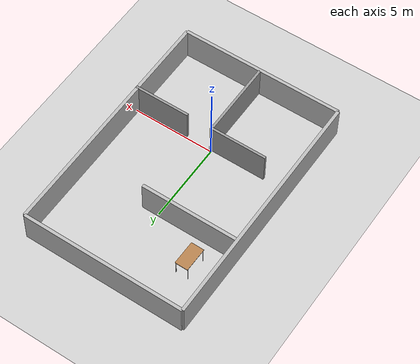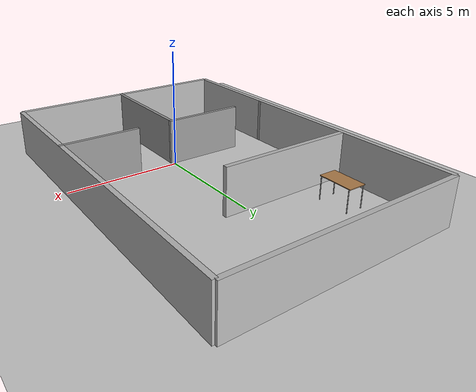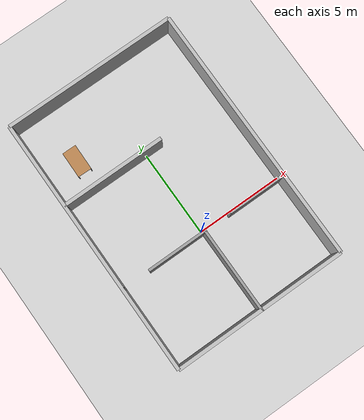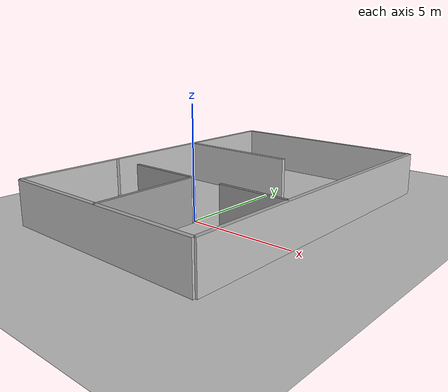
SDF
<sdf version="1.6">
 <world name="default">
  <physics name="default_physics" default="0" type="ode">
   <ode>
    <solver>
     <type>quick</type>
     <iters>20</iters>
     <sor>1</sor>
     <use_dynamic_moi_rescaling>0</use_dynamic_moi_rescaling>
    </solver>
    <constraints>
     <cfm>0</cfm>
     <erp>0.2</erp>
     <contact_max_correcting_vel>100</contact_max_correcting_vel>
     <contact_surface_layer>0</contact_surface_layer>
    </constraints>
   </ode>
   <real_time_update_rate>1000</real_time_update_rate>
   <max_step_size>0.001</max_step_size>
   <real_time_factor>1</real_time_factor>
  </physics>
  <light name="sun" type="directional">
   <pose>0 0 10 0 -0 0</pose>
   <diffuse>0.8 0.8 0.8 1</diffuse>
   <specular>0.2 0.2 0.2 1</specular>
   <attenuation>
    <range>1000</range>
    <constant>0.9</constant>
    <linear>0.01</linear>
    <quadratic>0.001</quadratic>
   </attenuation>
   <direction>-0.5 0.1 -0.9</direction>
  </light>
  <model name="ground_plane">
   <static>1</static>
   <link name="link">
    <collision name="collision">
     <geometry><plane><normal>0 0 1</normal><size>100 100</size></plane></geometry>
     <surface><friction><ode><mu>100</mu><mu2>50</mu2></ode></friction></surface>
    </collision>
    <visual name="visual">
     <cast_shadows>0</cast_shadows>
     <geometry><plane><normal>0 0 1</normal><size>100 100</size></plane></geometry>
     <material>
      <script><uri>file://media/materials/scripts/gazebo.material</uri><name>Gazebo/Grey</name></script>
     </material>
    </visual>
   </link>
  </model>
  <model name="wall_1_model">
   <pose>0 -5 1 0 -0 0</pose>
   <static>1</static>
   <link name="wall_1_body">
    <inertial>
     <mass>1</mass>
     <inertia><ixx>1</ixx><ixy>0</ixy><ixz>0</ixz><iyy>1</iyy><iyz>0</iyz><izz>1</izz></inertia>
    </inertial>
    <collision name="collision"><geometry><box><size>10 0.2 2</size></box></geometry></collision>
    <visual name="visual"><geometry><box><size>10 0.2 2</size></box></geometry></visual>
   </link>
  </model>
  <model name="wall_2_model">
   <pose>0 10 1 0 -0 0</pose>
   <static>1</static>
   <link name="wall_2_body">
    <inertial>
     <mass>1</mass>
     <inertia><ixx>1</ixx><ixy>0</ixy><ixz>0</ixz><iyy>1</iyy><iyz>0</iyz><izz>1</izz></inertia>
    </inertial>
    <collision name="collision"><geometry><box><size>10 0.2 2</size></box></geometry></collision>
    <visual name="visual"><geometry><box><size>10 0.2 2</size></box></geometry></visual>
   </link>
  </model>
  <model name="wall_3_model">
   <pose>-5 2.5 1 0 -0 0</pose>
   <static>1</static>
   <link name="wall_3_body">
    <inertial>
     <mass>1</mass>
     <inertia><ixx>1</ixx><ixy>0</ixy><ixz>0</ixz><iyy>1</iyy><iyz>0</iyz><izz>1</izz></inertia>
    </inertial>
    <collision name="collision"><geometry><box><size>0.2 15 2</size></box></geometry></collision>
    <visual name="visual"><geometry><box><size>0.2 15 2</size></box></geometry></visual>
   </link>
  </model>
  <model name="wall_4_model">
   <pose>5 2.5 1 0 -0 0</pose>
   <static>1</static>
   <link name="wall_4_body">
    <inertial>
     <mass>1</mass>
     <inertia><ixx>1</ixx><ixy>0</ixy><ixz>0</ixz><iyy>1</iyy><iyz>0</iyz><izz>1</izz></inertia>
    </inertial>
    <collision name="collision"><geometry><box><size>0.2 15 2</size></box></geometry></collision>
    <visual name="visual"><geometry><box><size>0.2 15 2</size></box></geometry></visual>
   </link>
  </model>
  <model name="wall_5_model">
   <pose>-2 5 1 0 -0 0</pose>
   <static>1</static>
   <link name="wall_5_body">
    <inertial>
     <mass>1</mass>
     <inertia><ixx>1</ixx><ixy>0</ixy><ixz>0</ixz><iyy>1</iyy><iyz>0</iyz><izz>1</izz></inertia>
    </inertial>
    <collision name="collision"><geometry><box><size>6 0.2 2</size></box></geometry></collision>
    <visual name="visual"><geometry><box><size>6 0.2 2</size></box></geometry></visual>
   </link>
  </model>
  <light name="male03light" type="point">
   <pose>3.6 0.53 1.6 0 -0 0</pose>
   <diffuse>0.5 0.5 0.5 1</diffuse>
   <specular>0.1 0.1 0.1 1</specular>
   <attenuation>
    <range>1</range>
    <linear>0.01</linear>
    <constant>0.3</constant>
    <quadratic>0</quadratic>
   </attenuation>
   <direction>0 0 -1</direction>
   <spot><inner_angle>0.6</inner_angle><outer_angle>0.8</outer_angle><falloff>1.2</falloff></spot>
   <cast_shadows>0</cast_shadows>
  </light>
  <light name="female02light" type="point">
   <pose>-2.5 -2.63 1.5 0 -0 0</pose>
   <diffuse>0.5 0.5 0.5 1</diffuse>
   <specular>0.1 0.1 0.1 1</specular>
   <attenuation>
    <range>1</range>
    <linear>0.01</linear>
    <constant>0.3</constant>
    <quadratic>0</quadratic>
   </attenuation>
   <direction>0 0 -1</direction>
   <spot><inner_angle>0.6</inner_angle><outer_angle>0.8</outer_angle><falloff>1.2</falloff></spot>
   <cast_shadows>0</cast_shadows>
  </light>
  <light name="female03light" type="point">
   <pose>-3 6.2 1.5 0 -0 0</pose>
   <diffuse>0.5 0.5 0.5 1</diffuse>
   <specular>0.1 0.1 0.1 1</specular>
   <attenuation>
    <range>1</range>
    <linear>0.01</linear>
    <constant>0.3</constant>
    <quadratic>0</quadratic>
   </attenuation>
   <direction>0 0 -1</direction>
   <spot><inner_angle>0.6</inner_angle><outer_angle>0.8</outer_angle><falloff>1.2</falloff></spot>
   <cast_shadows>0</cast_shadows>
  </light>
  <light name="female02bislight" type="point">
   <pose>3.8 6.7 1.5 0 -0 0</pose>
   <diffuse>0.5 0.5 0.5 1</diffuse>
   <specular>0.1 0.1 0.1 1</specular>
   <attenuation>
    <range>1</range>
    <linear>0.01</linear>
    <constant>0.3</constant>
    <quadratic>0</quadratic>
   </attenuation>
   <direction>0 0 -1</direction>
   <spot><inner_angle>0.6</inner_angle><outer_angle>0.8</outer_angle><falloff>1.2</falloff></spot>
   <cast_shadows>0</cast_shadows>
  </light>
  <light name="male03bislight" type="point">
   <pose>-2.9 3.7 1.5 0 -0 0</pose>
   <diffuse>0.5 0.5 0.5 1</diffuse>
   <specular>0.1 0.1 0.1 1</specular>
   <attenuation>
    <range>1</range>
    <linear>0.01</linear>
    <constant>0.3</constant>
    <quadratic>0</quadratic>
   </attenuation>
   <direction>0 0 -1</direction>
   <spot><inner_angle>0.6</inner_angle><outer_angle>0.8</outer_angle><falloff>1.2</falloff></spot>
   <cast_shadows>0</cast_shadows>
  </light>
  <gravity>0 0 -9.81</gravity>
  <magnetic_field>6e-06 2.3e-05 -4.2e-05</magnetic_field>
  <atmosphere type="adiabatic"/>
  <scene><ambient>0.4 0.4 0.4 1</ambient><background>0.7 0.7 0.7 1</background><shadows>1</shadows></scene>
  <audio><device>default</device></audio>
  <spherical_coordinates>
   <surface_model>EARTH_WGS84</surface_model>
   <latitude_deg>0</latitude_deg>
   <longitude_deg>0</longitude_deg>
   <elevation>0</elevation>
   <heading_deg>0</heading_deg>
  </spherical_coordinates>
  <model name="Untitled">
   <pose>0.088 -2.5915 0 0 -0 0</pose>
   <link name="Wall_0">
    <pose>0 2.4325 0 0 -0 0</pose>
    <visual name="Wall_0_Visual_0">
     <pose>-4.99325 0 1 0 -0 0</pose>
     <geometry><box><size>0.013501 0.15 2</size></box></geometry>
     <material>
      <script><uri>file://media/materials/scripts/gazebo.material</uri><name>Gazebo/Grey</name></script>
      <ambient>1 1 1 1</ambient>
     </material>
     <meta><layer>0</layer></meta>
    </visual>
    <collision name="Wall_0_Collision_0">
     <geometry><box><size>0.013501 0.15 2</size></box></geometry>
     <pose>-4.99325 0 1 0 -0 0</pose>
    </collision>
    <visual name="Wall_0_Visual_1">
     <pose>-1.71376 0 1 0 -0 0</pose>
     <geometry><box><size>3.54548 0.15 2</size></box></geometry>
     <material>
      <script><uri>file://media/materials/scripts/gazebo.material</uri><name>Gazebo/Grey</name></script>
      <ambient>1 1 1 1</ambient>
     </material>
     <meta><layer>0</layer></meta>
    </visual>
    <collision name="Wall_0_Collision_1">
     <geometry><box><size>3.54548 0.15 2</size></box></geometry>
     <pose>-1.71376 0 1 0 -0 0</pose>
    </collision>
    <visual name="Wall_0_Visual_2">
     <pose>3.27949 0 1 0 -0 0</pose>
     <geometry><box><size>3.44102 0.15 2</size></box></geometry>
     <material>
      <script><uri>file://media/materials/scripts/gazebo.material</uri><name>Gazebo/Grey</name></script>
      <ambient>1 1 1 1</ambient>
     </material>
     <meta><layer>0</layer></meta>
    </visual>
    <collision name="Wall_0_Collision_2">
     <geometry><box><size>3.44102 0.15 2</size></box></geometry>
     <pose>3.27949 0 1 0 -0 0</pose>
    </collision>
   </link>
   <link name="Wall_4">
    <collision name="Wall_4_Collision">
     <geometry><box><size>5 0.15 2</size></box></geometry>
     <pose>0 0 1 0 -0 0</pose>
    </collision>
    <visual name="Wall_4_Visual">
     <pose>0 0 1 0 -0 0</pose>
     <geometry><box><size>5 0.15 2</size></box></geometry>
     <material>
      <script><uri>file://media/materials/scripts/gazebo.material</uri><name>Gazebo/Grey</name></script>
      <ambient>1 1 1 1</ambient>
     </material>
     <meta><layer>0</layer></meta>
    </visual>
    <pose>-0.026 -0.0075 0 0 -0 1.5708</pose>
   </link>
   <static>1</static>
  </model>
  <model name="table">
   <static>1</static>
   <link name="link">
    <collision name="surface">
     <pose>0 0 1 0 -0 0</pose>
     <geometry><box><size>1.5 0.8 0.03</size></box></geometry>
     <surface><friction><ode><mu>0.6</mu><mu2>0.6</mu2></ode></friction></surface>
    </collision>
    <visual name="visual1">
     <pose>0 0 1 0 -0 0</pose>
     <geometry><box><size>1.5 0.8 0.03</size></box></geometry>
     <material>
      <script><uri>file://media/materials/scripts/gazebo.material</uri><name>Gazebo/Wood</name></script>
     </material>
    </visual>
    <collision name="front_left_leg">
     <pose>0.68 0.38 0.5 0 -0 0</pose>
     <geometry><cylinder><radius>0.02</radius><length>1</length></cylinder></geometry>
    </collision>
    <visual name="front_left_leg">
     <pose>0.68 0.38 0.5 0 -0 0</pose>
     <geometry><cylinder><radius>0.02</radius><length>1</length></cylinder></geometry>
     <material>
      <script><uri>file://media/materials/scripts/gazebo.material</uri><name>Gazebo/Grey</name></script>
     </material>
    </visual>
    <collision name="front_right_leg">
     <pose>0.68 -0.38 0.5 0 -0 0</pose>
     <geometry><cylinder><radius>0.02</radius><length>1</length></cylinder></geometry>
    </collision>
    <visual name="front_right_leg">
     <pose>0.68 -0.38 0.5 0 -0 0</pose>
     <geometry><cylinder><radius>0.02</radius><length>1</length></cylinder></geometry>
     <material>
      <script><uri>file://media/materials/scripts/gazebo.material</uri><name>Gazebo/Grey</name></script>
     </material>
    </visual>
    <collision name="back_right_leg">
     <pose>-0.68 -0.38 0.5 0 -0 0</pose>
     <geometry><cylinder><radius>0.02</radius><length>1</length></cylinder></geometry>
    </collision>
    <visual name="back_right_leg">
     <pose>-0.68 -0.38 0.5 0 -0 0</pose>
     <geometry><cylinder><radius>0.02</radius><length>1</length></cylinder></geometry>
     <material>
      <script><uri>file://media/materials/scripts/gazebo.material</uri><name>Gazebo/Grey</name></script>
     </material>
    </visual>
    <collision name="back_left_leg">
     <pose>-0.68 0.38 0.5 0 -0 0</pose>
     <geometry><cylinder><radius>0.02</radius><length>1</length></cylinder></geometry>
    </collision>
    <visual name="back_left_leg">
     <pose>-0.68 0.38 0.5 0 -0 0</pose>
     <geometry><cylinder><radius>0.02</radius><length>1</length></cylinder></geometry>
     <material>
      <script><uri>file://media/materials/scripts/gazebo.material</uri><name>Gazebo/Grey</name></script>
     </material>
    </visual>
   </link>
   <pose>-3.1806 6.71851 0 0 -0 1.55867</pose>
  </model>
 </world>
</sdf>
